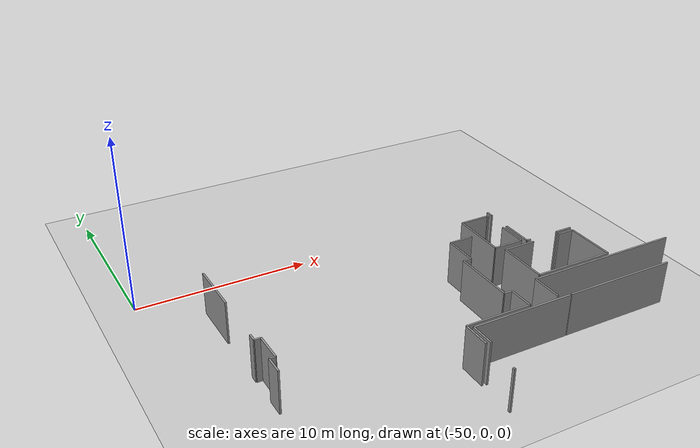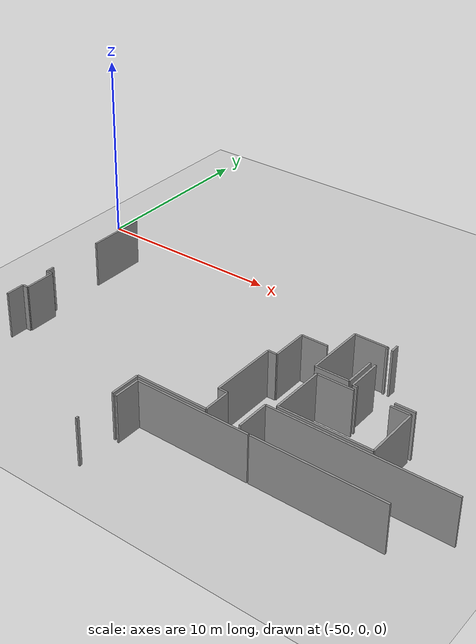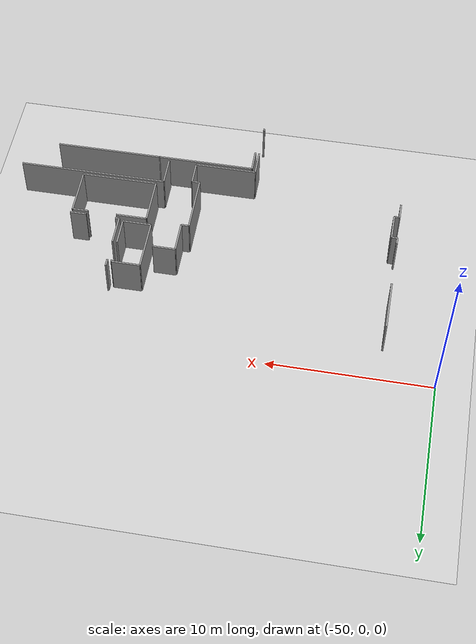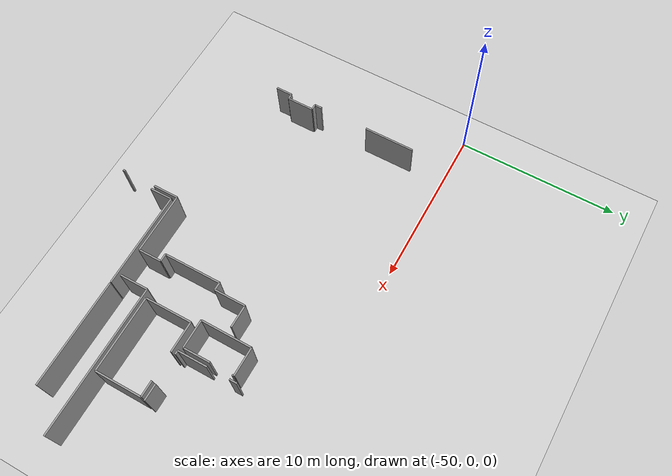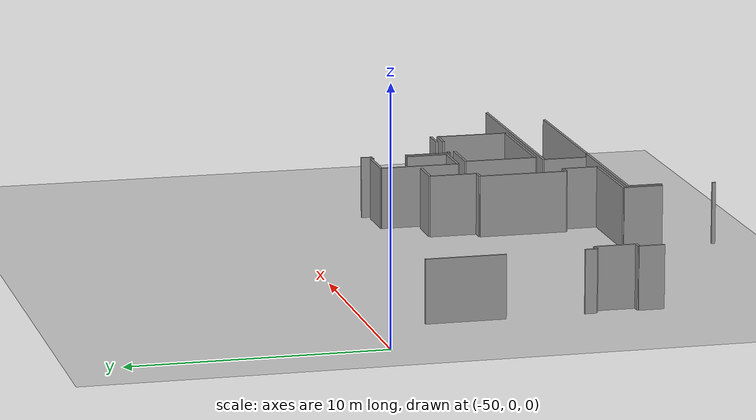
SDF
<sdf version="1.6">
 <world name="default">
  <model name="ground_plane">
   <static>1</static>
   <link name="link">
    <collision name="collision">
     <geometry><plane><normal>0 0 1</normal><size>100 100</size></plane></geometry>
     <surface><friction><ode><mu>100</mu><mu2>50</mu2></ode></friction></surface>
    </collision>
    <visual name="visual">
     <cast_shadows>0</cast_shadows>
     <geometry><plane><normal>0 0 1</normal><size>100 100</size></plane></geometry>
     <material>
      <script><uri>file://media/materials/scripts/gazebo.material</uri><name>Gazebo/Grey</name></script>
     </material>
    </visual>
   </link>
  </model>
  <model name="50045233">
   <static>1</static>
   <link name="Wall_109">
    <collision name="Wall_109_Collision">
     <geometry><box><size>1.0170997113 0.1 2.5</size></box></geometry>
     <pose>0.508549855652 0 1.25 0 0 0</pose>
    </collision>
    <visual name="Wall_109_Visual">
     <pose>0.508549855652 0 1.25 0 0 0</pose>
     <geometry><box><size>1.0170997113 0.1 2.5</size></box></geometry>
     <material>
      <script><uri>file://media/materials/scripts/gazebo.material</uri><name>Gazebo/Grey</name></script>
      <ambient>1 1 1 1</ambient>
     </material>
    </visual>
    <pose>0.0579930839758 -30.6570223026 0 0 0 1.57079632679</pose>
   </link>
   <link name="Wall_110">
    <collision name="Wall_110_Collision">
     <geometry><box><size>0.32562418705 0.1 2.5</size></box></geometry>
     <pose>0.162812093525 0 1.25 0 0 0</pose>
    </collision>
    <visual name="Wall_110_Visual">
     <pose>0.162812093525 0 1.25 0 0 0</pose>
     <geometry><box><size>0.32562418705 0.1 2.5</size></box></geometry>
     <material>
      <script><uri>file://media/materials/scripts/gazebo.material</uri><name>Gazebo/Grey</name></script>
      <ambient>1 1 1 1</ambient>
     </material>
    </visual>
    <pose>0.0579930839758 -29.6399225913 0 0 0 0.0</pose>
   </link>
   <link name="Wall_111">
    <collision name="Wall_111_Collision">
     <geometry><box><size>1.64664826624 0.1 2.5</size></box></geometry>
     <pose>0.823324133118 0 1.25 0 0 0</pose>
    </collision>
    <visual name="Wall_111_Visual">
     <pose>0.823324133118 0 1.25 0 0 0</pose>
     <geometry><box><size>1.64664826624 0.1 2.5</size></box></geometry>
     <material>
      <script><uri>file://media/materials/scripts/gazebo.material</uri><name>Gazebo/Grey</name></script>
      <ambient>1 1 1 1</ambient>
     </material>
    </visual>
    <pose>0.383617271026 -29.6399225913 0 0 0 1.57079632679</pose>
   </link>
   <link name="Wall_112">
    <collision name="Wall_112_Collision">
     <geometry><box><size>0.353288284001 0.1 2.5</size></box></geometry>
     <pose>0.176644142001 0 1.25 0 0 0</pose>
    </collision>
    <visual name="Wall_112_Visual">
     <pose>0.176644142001 0 1.25 0 0 0</pose>
     <geometry><box><size>0.353288284001 0.1 2.5</size></box></geometry>
     <material>
      <script><uri>file://media/materials/scripts/gazebo.material</uri><name>Gazebo/Grey</name></script>
      <ambient>1 1 1 1</ambient>
     </material>
    </visual>
    <pose>0.383617271026 -27.9932743251 0 0 0 3.14159265359</pose>
   </link>
   <link name="Wall_113">
    <collision name="Wall_113_Collision">
     <geometry><box><size>0.460518384569 0.1 2.5</size></box></geometry>
     <pose>0.230259192285 0 1.25 0 0 0</pose>
    </collision>
    <visual name="Wall_113_Visual">
     <pose>0.230259192285 0 1.25 0 0 0</pose>
     <geometry><box><size>0.460518384569 0.1 2.5</size></box></geometry>
     <material>
      <script><uri>file://media/materials/scripts/gazebo.material</uri><name>Gazebo/Grey</name></script>
      <ambient>1 1 1 1</ambient>
     </material>
    </visual>
    <pose>0.0303289870245 -27.9932743251 0 0 0 1.57079632679</pose>
   </link>
   <link name="Wall_114">
    <collision name="Wall_114_Collision">
     <geometry><box><size>3.13429142476 0.1 2.5</size></box></geometry>
     <pose>1.56714571238 0 1.25 0 0 0</pose>
    </collision>
    <visual name="Wall_114_Visual">
     <pose>1.56714571238 0 1.25 0 0 0</pose>
     <geometry><box><size>3.13429142476 0.1 2.5</size></box></geometry>
     <material>
      <script><uri>file://media/materials/scripts/gazebo.material</uri><name>Gazebo/Grey</name></script>
      <ambient>1 1 1 1</ambient>
     </material>
    </visual>
    <pose>0.0303289870245 -24.4667364614 0 0 0 1.57079632679</pose>
   </link>
   <link name="Wall_118">
    <collision name="Wall_118_Collision">
     <geometry><box><size>1.39411820691 0.1 2.5</size></box></geometry>
     <pose>0.697059103455 0 1.25 0 0 0</pose>
    </collision>
    <visual name="Wall_118_Visual">
     <pose>0.697059103455 0 1.25 0 0 0</pose>
     <geometry><box><size>1.39411820691 0.1 2.5</size></box></geometry>
     <material>
      <script><uri>file://media/materials/scripts/gazebo.material</uri><name>Gazebo/Grey</name></script>
      <ambient>1 1 1 1</ambient>
     </material>
    </visual>
    <pose>14.4934488119 -24.8301767076 0 0 0 3.14159265359</pose>
   </link>
   <link name="Wall_119">
    <collision name="Wall_119_Collision">
     <geometry><box><size>1.93661368611 0.1 2.5</size></box></geometry>
     <pose>0.968306843057 0 1.25 0 0 0</pose>
    </collision>
    <visual name="Wall_119_Visual">
     <pose>0.968306843057 0 1.25 0 0 0</pose>
     <geometry><box><size>1.93661368611 0.1 2.5</size></box></geometry>
     <material>
      <script><uri>file://media/materials/scripts/gazebo.material</uri><name>Gazebo/Grey</name></script>
      <ambient>1 1 1 1</ambient>
     </material>
    </visual>
    <pose>13.099330605 -24.8301767076 0 0 0 -1.57079632679</pose>
   </link>
   <link name="Wall_120">
    <collision name="Wall_120_Collision">
     <geometry><box><size>0.471812442499 0.1 2.5</size></box></geometry>
     <pose>0.235906221249 0 1.25 0 0 0</pose>
    </collision>
    <visual name="Wall_120_Visual">
     <pose>0.235906221249 0 1.25 0 0 0</pose>
     <geometry><box><size>0.471812442499 0.1 2.5</size></box></geometry>
     <material>
      <script><uri>file://media/materials/scripts/gazebo.material</uri><name>Gazebo/Grey</name></script>
      <ambient>1 1 1 1</ambient>
     </material>
    </visual>
    <pose>13.099330605 -26.7667903937 0 0 0 3.14159265359</pose>
   </link>
   <link name="Wall_121">
    <collision name="Wall_121_Collision">
     <geometry><box><size>3.57691697598 0.1 2.5</size></box></geometry>
     <pose>1.78845848799 0 1.25 0 0 0</pose>
    </collision>
    <visual name="Wall_121_Visual">
     <pose>1.78845848799 0 1.25 0 0 0</pose>
     <geometry><box><size>3.57691697598 0.1 2.5</size></box></geometry>
     <material>
      <script><uri>file://media/materials/scripts/gazebo.material</uri><name>Gazebo/Grey</name></script>
      <ambient>1 1 1 1</ambient>
     </material>
    </visual>
    <pose>12.6275181625 -26.7667903937 0 0 0 -1.57079632679</pose>
   </link>
   <link name="Wall_122">
    <collision name="Wall_122_Collision">
     <geometry><box><size>0.4760001269 0.1 2.5</size></box></geometry>
     <pose>0.23800006345 0 1.25 0 0 0</pose>
    </collision>
    <visual name="Wall_122_Visual">
     <pose>0.23800006345 0 1.25 0 0 0</pose>
     <geometry><box><size>0.4760001269 0.1 2.5</size></box></geometry>
     <material>
      <script><uri>file://media/materials/scripts/gazebo.material</uri><name>Gazebo/Grey</name></script>
      <ambient>1 1 1 1</ambient>
     </material>
    </visual>
    <pose>12.6275181625 -30.3437073697 0 0 0 0.0</pose>
   </link>
   <link name="Wall_123">
    <collision name="Wall_123_Collision">
     <geometry><box><size>1.44386282161 0.1 2.5</size></box></geometry>
     <pose>0.721931410805 0 1.25 0 0 0</pose>
    </collision>
    <visual name="Wall_123_Visual">
     <pose>0.721931410805 0 1.25 0 0 0</pose>
     <geometry><box><size>1.44386282161 0.1 2.5</size></box></geometry>
     <material>
      <script><uri>file://media/materials/scripts/gazebo.material</uri><name>Gazebo/Grey</name></script>
      <ambient>1 1 1 1</ambient>
     </material>
    </visual>
    <pose>13.1035182894 -30.3437073697 0 0 0 -1.57079632679</pose>
   </link>
   <link name="Wall_124">
    <collision name="Wall_124_Collision">
     <geometry><box><size>3.76561657308 0.1 2.5</size></box></geometry>
     <pose>1.88280828654 0 1.25 0 0 0</pose>
    </collision>
    <visual name="Wall_124_Visual">
     <pose>1.88280828654 0 1.25 0 0 0</pose>
     <geometry><box><size>3.76561657308 0.1 2.5</size></box></geometry>
     <material>
      <script><uri>file://media/materials/scripts/gazebo.material</uri><name>Gazebo/Grey</name></script>
      <ambient>1 1 1 1</ambient>
     </material>
    </visual>
    <pose>13.1035182894 -31.7875701913 0 0 0 3.14159265359</pose>
   </link>
   <link name="Wall_125">
    <collision name="Wall_125_Collision">
     <geometry><box><size>1.58903588084 0.1 2.5</size></box></geometry>
     <pose>0.794517940421 0 1.25 0 0 0</pose>
    </collision>
    <visual name="Wall_125_Visual">
     <pose>0.794517940421 0 1.25 0 0 0</pose>
     <geometry><box><size>1.58903588084 0.1 2.5</size></box></geometry>
     <material>
      <script><uri>file://media/materials/scripts/gazebo.material</uri><name>Gazebo/Grey</name></script>
      <ambient>1 1 1 1</ambient>
     </material>
    </visual>
    <pose>9.33790171632 -31.7875701913 0 0 0 -1.57079632679</pose>
   </link>
   <link name="Wall_126">
    <collision name="Wall_126_Collision">
     <geometry><box><size>0.14517305923 0.1 2.5</size></box></geometry>
     <pose>0.0725865296152 0 1.25 0 0 0</pose>
    </collision>
    <visual name="Wall_126_Visual">
     <pose>0.0725865296152 0 1.25 0 0 0</pose>
     <geometry><box><size>0.14517305923 0.1 2.5</size></box></geometry>
     <material>
      <script><uri>file://media/materials/scripts/gazebo.material</uri><name>Gazebo/Grey</name></script>
      <ambient>1 1 1 1</ambient>
     </material>
    </visual>
    <pose>9.33790171632 -35.4298404238 0 0 0 -1.57079632679</pose>
   </link>
   <link name="Wall_129">
    <collision name="Wall_129_Collision">
     <geometry><box><size>1.40173217855 0.1 2.5</size></box></geometry>
     <pose>0.700866089274 0 1.25 0 0 0</pose>
    </collision>
    <visual name="Wall_129_Visual">
     <pose>0.700866089274 0 1.25 0 0 0</pose>
     <geometry><box><size>1.40173217855 0.1 2.5</size></box></geometry>
     <material>
      <script><uri>file://media/materials/scripts/gazebo.material</uri><name>Gazebo/Grey</name></script>
      <ambient>1 1 1 1</ambient>
     </material>
    </visual>
    <pose>9.58256400495 -33.4345991561 0 0 0 1.57079632679</pose>
   </link>
   <link name="Wall_130">
    <collision name="Wall_130_Collision">
     <geometry><box><size>5.88331588465 0.1 2.5</size></box></geometry>
     <pose>2.94165794232 0 1.25 0 0 0</pose>
    </collision>
    <visual name="Wall_130_Visual">
     <pose>2.94165794232 0 1.25 0 0 0</pose>
     <geometry><box><size>5.88331588465 0.1 2.5</size></box></geometry>
     <material>
      <script><uri>file://media/materials/scripts/gazebo.material</uri><name>Gazebo/Grey</name></script>
      <ambient>1 1 1 1</ambient>
     </material>
    </visual>
    <pose>9.58256400495 -32.0328669776 0 0 0 0.0</pose>
   </link>
   <link name="Wall_161">
    <collision name="Wall_161_Collision">
     <geometry><box><size>6.49573300339 0.1 2.5</size></box></geometry>
     <pose>3.2478665017 0 1.25 0 0 0</pose>
    </collision>
    <visual name="Wall_161_Visual">
     <pose>3.2478665017 0 1.25 0 0 0</pose>
     <geometry><box><size>6.49573300339 0.1 2.5</size></box></geometry>
     <material>
      <script><uri>file://media/materials/scripts/gazebo.material</uri><name>Gazebo/Grey</name></script>
      <ambient>1 1 1 1</ambient>
     </material>
    </visual>
    <pose>15.5241267726 -32.0281716951 0 0 0 0.0</pose>
   </link>
   <link name="Wall_168">
    <collision name="Wall_168_Collision">
     <geometry><box><size>1.76352273088 0.1 2.5</size></box></geometry>
     <pose>0.881761365439 0 1.25 0 0 0</pose>
    </collision>
    <visual name="Wall_168_Visual">
     <pose>0.881761365439 0 1.25 0 0 0</pose>
     <geometry><box><size>1.76352273088 0.1 2.5</size></box></geometry>
     <material>
      <script><uri>file://media/materials/scripts/gazebo.material</uri><name>Gazebo/Grey</name></script>
      <ambient>1 1 1 1</ambient>
     </material>
    </visual>
    <pose>14.8483867898 -31.8021636369 0 0 0 1.57079632679</pose>
   </link>
   <link name="Wall_169">
    <collision name="Wall_169_Collision">
     <geometry><box><size>9.06976301513 0.1 2.5</size></box></geometry>
     <pose>4.53488150757 0 1.25 0 0 0</pose>
    </collision>
    <visual name="Wall_169_Visual">
     <pose>4.53488150757 0 1.25 0 0 0</pose>
     <geometry><box><size>9.06976301513 0.1 2.5</size></box></geometry>
     <material>
      <script><uri>file://media/materials/scripts/gazebo.material</uri><name>Gazebo/Grey</name></script>
      <ambient>1 1 1 1</ambient>
     </material>
    </visual>
    <pose>14.8483867898 -30.0386409061 0 0 0 0.0</pose>
   </link>
   <link name="Wall_211">
    <collision name="Wall_211_Collision">
     <geometry><box><size>1.85235239999 0.1 2.5</size></box></geometry>
     <pose>0.926176199994 0 1.25 0 0 0</pose>
    </collision>
    <visual name="Wall_211_Visual">
     <pose>0.926176199994 0 1.25 0 0 0</pose>
     <geometry><box><size>1.85235239999 0.1 2.5</size></box></geometry>
     <material>
      <script><uri>file://media/materials/scripts/gazebo.material</uri><name>Gazebo/Grey</name></script>
      <ambient>1 1 1 1</ambient>
     </material>
    </visual>
    <pose>16.9427365883 -26.6176834491 0 0 0 1.57079632679</pose>
   </link>
   <link name="Wall_212">
    <collision name="Wall_212_Collision">
     <geometry><box><size>0.467244059516 0.1 2.5</size></box></geometry>
     <pose>0.233622029758 0 1.25 0 0 0</pose>
    </collision>
    <visual name="Wall_212_Visual">
     <pose>0.233622029758 0 1.25 0 0 0</pose>
     <geometry><box><size>0.467244059516 0.1 2.5</size></box></geometry>
     <material>
      <script><uri>file://media/materials/scripts/gazebo.material</uri><name>Gazebo/Grey</name></script>
      <ambient>1 1 1 1</ambient>
     </material>
    </visual>
    <pose>16.9427365883 -23.3802227087 0 0 0 1.57079632679</pose>
   </link>
   <link name="Wall_217">
    <collision name="Wall_217_Collision">
     <geometry><box><size>1.00973953872 0.1 2.5</size></box></geometry>
     <pose>0.50486976936 0 1.25 0 0 0</pose>
    </collision>
    <visual name="Wall_217_Visual">
     <pose>0.50486976936 0 1.25 0 0 0</pose>
     <geometry><box><size>1.00973953872 0.1 2.5</size></box></geometry>
     <material>
      <script><uri>file://media/materials/scripts/gazebo.material</uri><name>Gazebo/Grey</name></script>
      <ambient>1 1 1 1</ambient>
     </material>
    </visual>
    <pose>20.0034262872 -26.6176834491 0 0 0 3.14159265359</pose>
   </link>
   <link name="Wall_218">
    <collision name="Wall_218_Collision">
     <geometry><box><size>0.237429015577 0.1 2.5</size></box></geometry>
     <pose>0.118714507788 0 1.25 0 0 0</pose>
    </collision>
    <visual name="Wall_218_Visual">
     <pose>0.118714507788 0 1.25 0 0 0</pose>
     <geometry><box><size>0.237429015577 0.1 2.5</size></box></geometry>
     <material>
      <script><uri>file://media/materials/scripts/gazebo.material</uri><name>Gazebo/Grey</name></script>
      <ambient>1 1 1 1</ambient>
     </material>
    </visual>
    <pose>17.1801656039 -26.6176834491 0 0 0 3.14159265359</pose>
   </link>
   <link name="Wall_224">
    <collision name="Wall_224_Collision">
     <geometry><box><size>1.74639129469 0.1 2.5</size></box></geometry>
     <pose>0.873195647346 0 1.25 0 0 0</pose>
    </collision>
    <visual name="Wall_224_Visual">
     <pose>0.873195647346 0 1.25 0 0 0</pose>
     <geometry><box><size>1.74639129469 0.1 2.5</size></box></geometry>
     <material>
      <script><uri>file://media/materials/scripts/gazebo.material</uri><name>Gazebo/Grey</name></script>
      <ambient>1 1 1 1</ambient>
     </material>
    </visual>
    <pose>14.9251610038 -26.4546175565 0 0 0 0.0</pose>
   </link>
   <link name="Wall_225">
    <collision name="Wall_225_Collision">
     <geometry><box><size>1.68890580883 0.1 2.5</size></box></geometry>
     <pose>0.844452904413 0 1.25 0 0 0</pose>
    </collision>
    <visual name="Wall_225_Visual">
     <pose>0.844452904413 0 1.25 0 0 0</pose>
     <geometry><box><size>1.68890580883 0.1 2.5</size></box></geometry>
     <material>
      <script><uri>file://media/materials/scripts/gazebo.material</uri><name>Gazebo/Grey</name></script>
      <ambient>1 1 1 1</ambient>
     </material>
    </visual>
    <pose>16.6715522985 -26.4546175565 0 0 0 1.57079632679</pose>
   </link>
   <link name="Wall_226">
    <collision name="Wall_226_Collision">
     <geometry><box><size>0.119793153771 0.1 2.5</size></box></geometry>
     <pose>0.0598965768853 0 1.25 0 0 0</pose>
    </collision>
    <visual name="Wall_226_Visual">
     <pose>0.0598965768853 0 1.25 0 0 0</pose>
     <geometry><box><size>0.119793153771 0.1 2.5</size></box></geometry>
     <material>
      <script><uri>file://media/materials/scripts/gazebo.material</uri><name>Gazebo/Grey</name></script>
      <ambient>1 1 1 1</ambient>
     </material>
    </visual>
    <pose>16.6715522985 -23.3875828813 0 0 0 1.57079632679</pose>
   </link>
   <link name="Wall_227">
    <collision name="Wall_227_Collision">
     <geometry><box><size>1.73268614574 0.1 2.5</size></box></geometry>
     <pose>0.866343072872 0 1.25 0 0 0</pose>
    </collision>
    <visual name="Wall_227_Visual">
     <pose>0.866343072872 0 1.25 0 0 0</pose>
     <geometry><box><size>1.73268614574 0.1 2.5</size></box></geometry>
     <material>
      <script><uri>file://media/materials/scripts/gazebo.material</uri><name>Gazebo/Grey</name></script>
      <ambient>1 1 1 1</ambient>
     </material>
    </visual>
    <pose>16.6715522985 -23.2677897275 0 0 0 3.14159265359</pose>
   </link>
   <link name="Wall_228">
    <collision name="Wall_228_Collision">
     <geometry><box><size>3.18685729885 0.1 2.5</size></box></geometry>
     <pose>1.59342864942 0 1.25 0 0 0</pose>
    </collision>
    <visual name="Wall_228_Visual">
     <pose>1.59342864942 0 1.25 0 0 0</pose>
     <geometry><box><size>3.18685729885 0.1 2.5</size></box></geometry>
     <material>
      <script><uri>file://media/materials/scripts/gazebo.material</uri><name>Gazebo/Grey</name></script>
      <ambient>1 1 1 1</ambient>
     </material>
    </visual>
    <pose>14.9388661527 -23.2677897275 0 0 0 -1.57509686174</pose>
   </link>
   <link name="Wall_229">
    <collision name="Wall_229_Collision">
     <geometry><box><size>2.91196345294 0.1 2.5</size></box></geometry>
     <pose>1.45598172647 0 1.25 0 0 0</pose>
    </collision>
    <visual name="Wall_229_Visual">
     <pose>1.45598172647 0 1.25 0 0 0</pose>
     <geometry><box><size>2.91196345294 0.1 2.5</size></box></geometry>
     <material>
      <script><uri>file://media/materials/scripts/gazebo.material</uri><name>Gazebo/Grey</name></script>
      <ambient>1 1 1 1</ambient>
     </material>
    </visual>
    <pose>15.2906316424 -29.7966435075 0 0 0 1.57079632679</pose>
   </link>
   <link name="Wall_230">
    <collision name="Wall_230_Collision">
     <geometry><box><size>1.89410234447 0.1 2.5</size></box></geometry>
     <pose>0.947051172234 0 1.25 0 0 0</pose>
    </collision>
    <visual name="Wall_230_Visual">
     <pose>0.947051172234 0 1.25 0 0 0</pose>
     <geometry><box><size>1.89410234447 0.1 2.5</size></box></geometry>
     <material>
      <script><uri>file://media/materials/scripts/gazebo.material</uri><name>Gazebo/Grey</name></script>
      <ambient>1 1 1 1</ambient>
     </material>
    </visual>
    <pose>15.2906316424 -26.8846800546 0 0 0 0.0</pose>
   </link>
   <link name="Wall_231">
    <collision name="Wall_231_Collision">
     <geometry><box><size>0.982075441769 0.1 2.5</size></box></geometry>
     <pose>0.491037720884 0 1.25 0 0 0</pose>
    </collision>
    <visual name="Wall_231_Visual">
     <pose>0.491037720884 0 1.25 0 0 0</pose>
     <geometry><box><size>0.982075441769 0.1 2.5</size></box></geometry>
     <material>
      <script><uri>file://media/materials/scripts/gazebo.material</uri><name>Gazebo/Grey</name></script>
      <ambient>1 1 1 1</ambient>
     </material>
    </visual>
    <pose>18.9403889471 -26.8846800546 0 0 0 0.0</pose>
   </link>
   <link name="Wall_232">
    <collision name="Wall_232_Collision">
     <geometry><box><size>2.90676057232 0.1 2.5</size></box></geometry>
     <pose>1.45338028616 0 1.25 0 0 0</pose>
    </collision>
    <visual name="Wall_232_Visual">
     <pose>1.45338028616 0 1.25 0 0 0</pose>
     <geometry><box><size>2.90676057232 0.1 2.5</size></box></geometry>
     <material>
      <script><uri>file://media/materials/scripts/gazebo.material</uri><name>Gazebo/Grey</name></script>
      <ambient>1 1 1 1</ambient>
     </material>
    </visual>
    <pose>19.9224643888 -26.8846800546 0 0 0 -1.57079632679</pose>
   </link>
   <link name="Wall_233">
    <collision name="Wall_233_Collision">
     <geometry><box><size>4.63183566859 0.1 2.5</size></box></geometry>
     <pose>2.31591783429 0 1.25 0 0 0</pose>
    </collision>
    <visual name="Wall_233_Visual">
     <pose>2.31591783429 0 1.25 0 0 0</pose>
     <geometry><box><size>4.63183566859 0.1 2.5</size></box></geometry>
     <material>
      <script><uri>file://media/materials/scripts/gazebo.material</uri><name>Gazebo/Grey</name></script>
      <ambient>1 1 1 1</ambient>
     </material>
    </visual>
    <pose>19.9224643888 -29.7914406269 0 0 0 -3.14046936639</pose>
   </link>
   <pose>-46.75 19.2209891818 0 0 0 0</pose>
  </model>
 </world>
</sdf>
